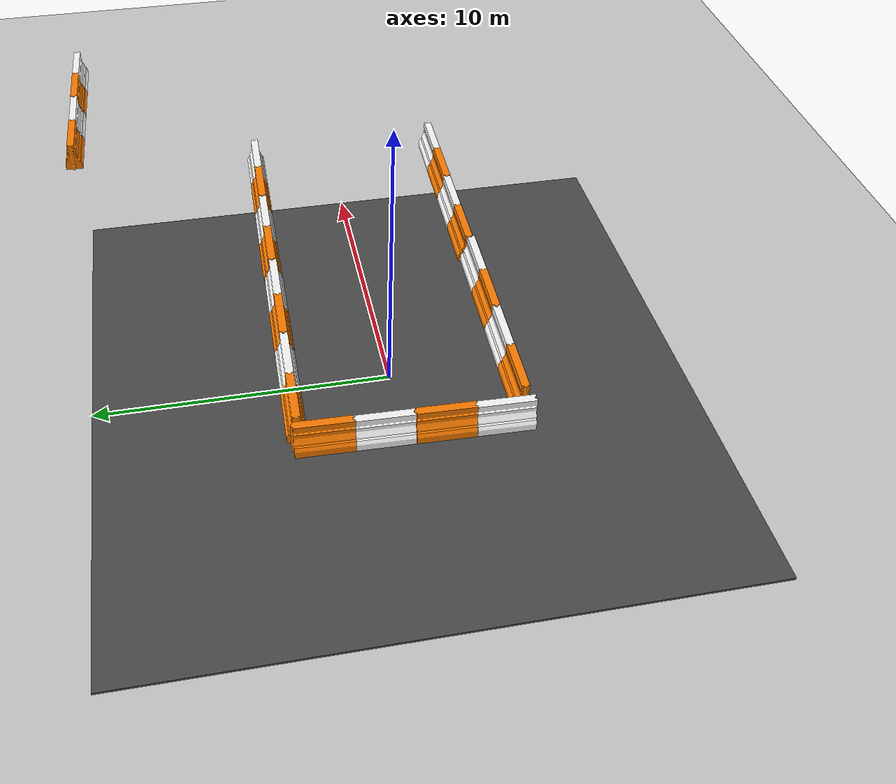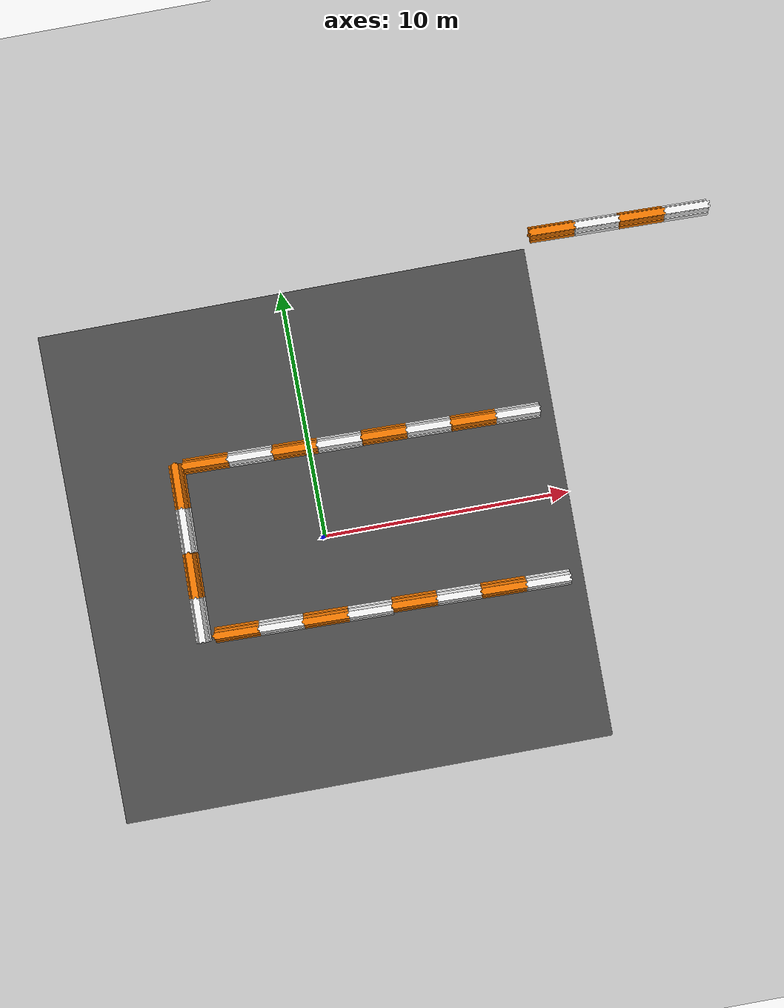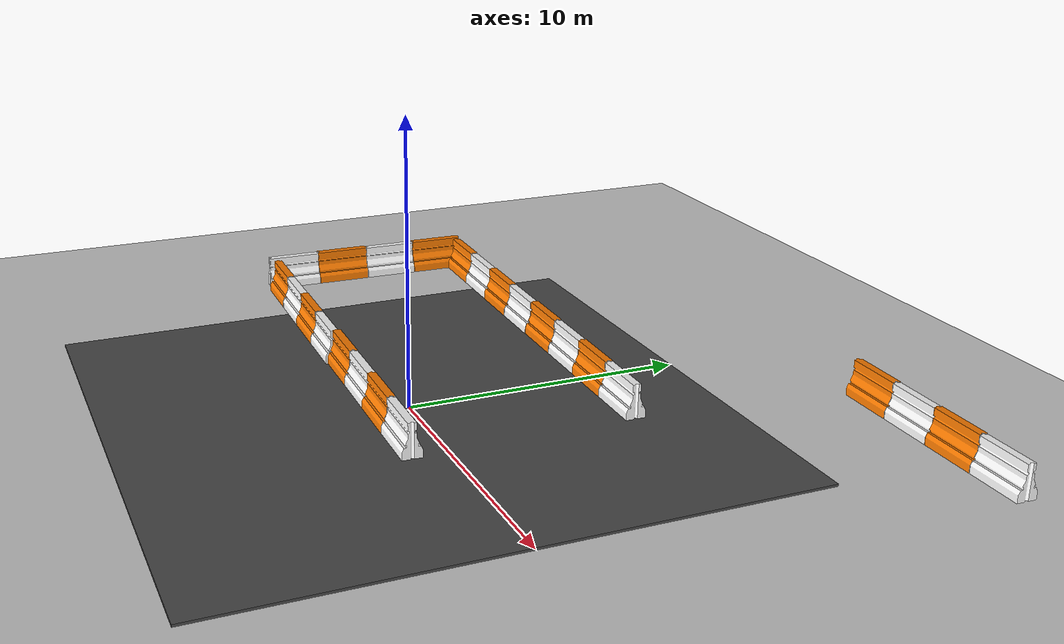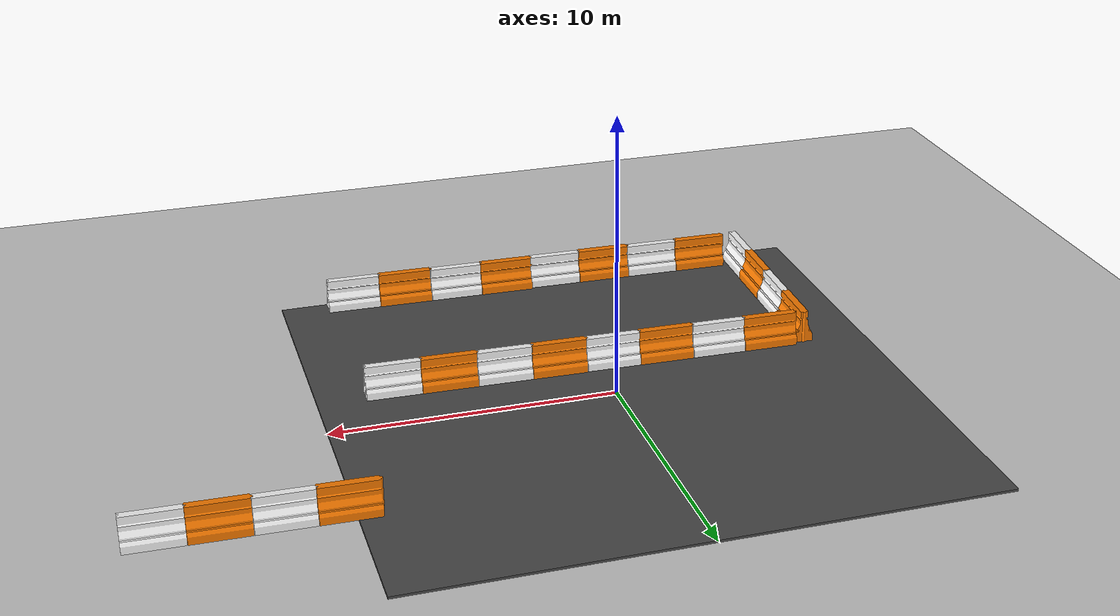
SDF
<sdf version="1.7">
 <world name="default">
  <model name="ground_plane">
   <static>1</static>
   <link name="link">
    <collision name="collision">
     <geometry><plane><normal>0 0 1</normal><size>100 100</size></plane></geometry>
     <surface><friction><ode><mu>100</mu><mu2>50</mu2></ode></friction></surface>
    </collision>
    <visual name="visual">
     <cast_shadows>0</cast_shadows>
     <geometry><plane><normal>0 0 1</normal><size>100 100</size></plane></geometry>
     <material>
      <script><uri>file://media/materials/scripts/gazebo.material</uri><name>Gazebo/Grey</name></script>
     </material>
    </visual>
   </link>
  </model>
  <model name="asphalt_plane">
   <static>1</static>
   <link name="link">
    <collision name="collision"><geometry><box><size>20 20 0.1</size></box></geometry></collision>
    <visual name="visual">
     <cast_shadows>0</cast_shadows>
     <geometry><box><size>20 20 0.1</size></box></geometry>
     <material>
      <script>
       <uri>model://asphalt_plane/materials/scripts</uri>
       <uri>model://asphalt_plane/materials/textures</uri>
       <name>vrc/asphalt</name>
      </script>
     </material>
    </visual>
   </link>
  </model>
  <model name="barrier">
   <link name="link">
    <pose>10.1496 5.51614 0 0 0 -0.785398</pose>
    <visual name="visual">
     <geometry>
      <mesh><uri>model://drc_practice_white_jersey_barrier/meshes/jersey_barrier.dae</uri></mesh>
     </geometry>
     <material><shader type="pixel"/></material>
    </visual>
    <collision name="collision">
     <geometry>
      <mesh>
       <uri>/home/ngc/.gazebo/models/drc_practice_white_jersey_barrier/meshes/jersey_barrier.dae</uri>
       <scale>1 1 1</scale>
      </mesh>
     </geometry>
     <surface>
      <friction>
       <ode><mu>1</mu><mu2>1</mu2><fdir1>0 0 0</fdir1><slip1>0</slip1><slip2>0</slip2></ode>
       <torsional>
        <coefficient>1</coefficient>
        <patch_radius>0</patch_radius>
        <surface_radius>0</surface_radius>
        <use_patch_radius>1</use_patch_radius>
        <ode><slip>0</slip></ode>
       </torsional>
      </friction>
      <bounce><restitution_coefficient>0</restitution_coefficient><threshold>1e+06</threshold></bounce>
      <contact>
       <collide_without_contact>0</collide_without_contact>
       <collide_without_contact_bitmask>1</collide_without_contact_bitmask>
       <collide_bitmask>1</collide_bitmask>
       <ode>
        <soft_cfm>0</soft_cfm>
        <soft_erp>0.2</soft_erp>
        <kp>1e+13</kp>
        <kd>1</kd>
        <max_vel>0.01</max_vel>
        <min_depth>0</min_depth>
       </ode>
       <bullet>
        <split_impulse>1</split_impulse>
        <split_impulse_penetration_threshold>-0.01</split_impulse_penetration_threshold>
        <soft_cfm>0</soft_cfm>
        <soft_erp>0.2</soft_erp>
        <kp>1e+13</kp>
        <kd>1</kd>
       </bullet>
      </contact>
     </surface>
    </collision>
   </link>
   <link name="five::link">
    <pose>6.3884 1.79074 0 0 0 -0.785398</pose>
    <visual name="visual">
     <geometry>
      <mesh><uri>model://drc_practice_orange_jersey_barrier/meshes/jersey_barrier.dae</uri></mesh>
     </geometry>
     <material><shader type="pixel"/></material>
    </visual>
    <collision name="collision">
     <geometry>
      <mesh>
       <uri>/home/ngc/.gazebo/models/drc_practice_orange_jersey_barrier/meshes/jersey_barrier.dae</uri>
       <scale>1 1 1</scale>
      </mesh>
     </geometry>
     <surface>
      <friction>
       <ode><mu>1</mu><mu2>1</mu2><fdir1>0 0 0</fdir1><slip1>0</slip1><slip2>0</slip2></ode>
       <torsional>
        <coefficient>1</coefficient>
        <patch_radius>0</patch_radius>
        <surface_radius>0</surface_radius>
        <use_patch_radius>1</use_patch_radius>
        <ode><slip>0</slip></ode>
       </torsional>
      </friction>
      <bounce><restitution_coefficient>0</restitution_coefficient><threshold>1e+06</threshold></bounce>
      <contact>
       <collide_without_contact>0</collide_without_contact>
       <collide_without_contact_bitmask>1</collide_without_contact_bitmask>
       <collide_bitmask>1</collide_bitmask>
       <ode>
        <soft_cfm>0</soft_cfm>
        <soft_erp>0.2</soft_erp>
        <kp>1e+13</kp>
        <kd>1</kd>
        <max_vel>0.01</max_vel>
        <min_depth>0</min_depth>
       </ode>
       <bullet>
        <split_impulse>1</split_impulse>
        <split_impulse_penetration_threshold>-0.01</split_impulse_penetration_threshold>
        <soft_cfm>0</soft_cfm>
        <soft_erp>0.2</soft_erp>
        <kp>1e+13</kp>
        <kd>1</kd>
       </bullet>
      </contact>
     </surface>
    </collision>
   </link>
   <link name="seven::link">
    <pose>8.89611 4.27529 0 0 0 -0.785398</pose>
    <visual name="visual">
     <geometry>
      <mesh><uri>model://drc_practice_orange_jersey_barrier/meshes/jersey_barrier.dae</uri></mesh>
     </geometry>
     <material><shader type="pixel"/></material>
    </visual>
    <collision name="collision">
     <geometry>
      <mesh>
       <uri>/home/ngc/.gazebo/models/drc_practice_orange_jersey_barrier/meshes/jersey_barrier.dae</uri>
       <scale>1 1 1</scale>
      </mesh>
     </geometry>
     <surface>
      <friction>
       <ode><mu>1</mu><mu2>1</mu2><fdir1>0 0 0</fdir1><slip1>0</slip1><slip2>0</slip2></ode>
       <torsional>
        <coefficient>1</coefficient>
        <patch_radius>0</patch_radius>
        <surface_radius>0</surface_radius>
        <use_patch_radius>1</use_patch_radius>
        <ode><slip>0</slip></ode>
       </torsional>
      </friction>
      <bounce><restitution_coefficient>0</restitution_coefficient><threshold>1e+06</threshold></bounce>
      <contact>
       <collide_without_contact>0</collide_without_contact>
       <collide_without_contact_bitmask>1</collide_without_contact_bitmask>
       <collide_bitmask>1</collide_bitmask>
       <ode>
        <soft_cfm>0</soft_cfm>
        <soft_erp>0.2</soft_erp>
        <kp>1e+13</kp>
        <kd>1</kd>
        <max_vel>0.01</max_vel>
        <min_depth>0</min_depth>
       </ode>
       <bullet>
        <split_impulse>1</split_impulse>
        <split_impulse_penetration_threshold>-0.01</split_impulse_penetration_threshold>
        <soft_cfm>0</soft_cfm>
        <soft_erp>0.2</soft_erp>
        <kp>1e+13</kp>
        <kd>1</kd>
       </bullet>
      </contact>
     </surface>
    </collision>
   </link>
   <link name="six::link">
    <pose>7.6423 3.03258 0 0 0 -0.785398</pose>
    <visual name="visual">
     <geometry>
      <mesh><uri>model://drc_practice_white_jersey_barrier/meshes/jersey_barrier.dae</uri></mesh>
     </geometry>
     <material><shader type="pixel"/></material>
    </visual>
    <collision name="collision">
     <geometry>
      <mesh>
       <uri>/home/ngc/.gazebo/models/drc_practice_white_jersey_barrier/meshes/jersey_barrier.dae</uri>
       <scale>1 1 1</scale>
      </mesh>
     </geometry>
     <surface>
      <friction>
       <ode><mu>1</mu><mu2>1</mu2><fdir1>0 0 0</fdir1><slip1>0</slip1><slip2>0</slip2></ode>
       <torsional>
        <coefficient>1</coefficient>
        <patch_radius>0</patch_radius>
        <surface_radius>0</surface_radius>
        <use_patch_radius>1</use_patch_radius>
        <ode><slip>0</slip></ode>
       </torsional>
      </friction>
      <bounce><restitution_coefficient>0</restitution_coefficient><threshold>1e+06</threshold></bounce>
      <contact>
       <collide_without_contact>0</collide_without_contact>
       <collide_without_contact_bitmask>1</collide_without_contact_bitmask>
       <collide_bitmask>1</collide_bitmask>
       <ode>
        <soft_cfm>0</soft_cfm>
        <soft_erp>0.2</soft_erp>
        <kp>1e+13</kp>
        <kd>1</kd>
        <max_vel>0.01</max_vel>
        <min_depth>0</min_depth>
       </ode>
       <bullet>
        <split_impulse>1</split_impulse>
        <split_impulse_penetration_threshold>-0.01</split_impulse_penetration_threshold>
        <soft_cfm>0</soft_cfm>
        <soft_erp>0.2</soft_erp>
        <kp>1e+13</kp>
        <kd>1</kd>
       </bullet>
      </contact>
     </surface>
    </collision>
   </link>
   <static>1</static>
   <pose>-2.67395 0.225919 3 0 0 -0.802882</pose>
  </model>
  <model name="barrier_clone">
   <link name="link">
    <pose>10.1496 5.51614 0 0 0 -0.785398</pose>
    <visual name="visual">
     <geometry>
      <mesh><uri>model://drc_practice_white_jersey_barrier/meshes/jersey_barrier.dae</uri></mesh>
     </geometry>
     <material><shader type="pixel"/></material>
    </visual>
    <collision name="collision">
     <geometry>
      <mesh>
       <uri>/home/ngc/.gazebo/models/drc_practice_white_jersey_barrier/meshes/jersey_barrier.dae</uri>
       <scale>1 1 1</scale>
      </mesh>
     </geometry>
     <surface>
      <friction>
       <ode><mu>1</mu><mu2>1</mu2><fdir1>0 0 0</fdir1><slip1>0</slip1><slip2>0</slip2></ode>
       <torsional>
        <coefficient>1</coefficient>
        <patch_radius>0</patch_radius>
        <surface_radius>0</surface_radius>
        <use_patch_radius>1</use_patch_radius>
        <ode><slip>0</slip></ode>
       </torsional>
      </friction>
      <bounce><restitution_coefficient>0</restitution_coefficient><threshold>1e+06</threshold></bounce>
      <contact>
       <collide_without_contact>0</collide_without_contact>
       <collide_without_contact_bitmask>1</collide_without_contact_bitmask>
       <collide_bitmask>1</collide_bitmask>
       <ode>
        <soft_cfm>0</soft_cfm>
        <soft_erp>0.2</soft_erp>
        <kp>1e+13</kp>
        <kd>1</kd>
        <max_vel>0.01</max_vel>
        <min_depth>0</min_depth>
       </ode>
       <bullet>
        <split_impulse>1</split_impulse>
        <split_impulse_penetration_threshold>-0.01</split_impulse_penetration_threshold>
        <soft_cfm>0</soft_cfm>
        <soft_erp>0.2</soft_erp>
        <kp>1e+13</kp>
        <kd>1</kd>
       </bullet>
      </contact>
     </surface>
    </collision>
   </link>
   <link name="five::link">
    <pose>6.3884 1.79074 0 0 0 -0.785398</pose>
    <visual name="visual">
     <geometry>
      <mesh><uri>model://drc_practice_orange_jersey_barrier/meshes/jersey_barrier.dae</uri></mesh>
     </geometry>
     <material><shader type="pixel"/></material>
    </visual>
    <collision name="collision">
     <geometry>
      <mesh>
       <uri>/home/ngc/.gazebo/models/drc_practice_orange_jersey_barrier/meshes/jersey_barrier.dae</uri>
       <scale>1 1 1</scale>
      </mesh>
     </geometry>
     <surface>
      <friction>
       <ode><mu>1</mu><mu2>1</mu2><fdir1>0 0 0</fdir1><slip1>0</slip1><slip2>0</slip2></ode>
       <torsional>
        <coefficient>1</coefficient>
        <patch_radius>0</patch_radius>
        <surface_radius>0</surface_radius>
        <use_patch_radius>1</use_patch_radius>
        <ode><slip>0</slip></ode>
       </torsional>
      </friction>
      <bounce><restitution_coefficient>0</restitution_coefficient><threshold>1e+06</threshold></bounce>
      <contact>
       <collide_without_contact>0</collide_without_contact>
       <collide_without_contact_bitmask>1</collide_without_contact_bitmask>
       <collide_bitmask>1</collide_bitmask>
       <ode>
        <soft_cfm>0</soft_cfm>
        <soft_erp>0.2</soft_erp>
        <kp>1e+13</kp>
        <kd>1</kd>
        <max_vel>0.01</max_vel>
        <min_depth>0</min_depth>
       </ode>
       <bullet>
        <split_impulse>1</split_impulse>
        <split_impulse_penetration_threshold>-0.01</split_impulse_penetration_threshold>
        <soft_cfm>0</soft_cfm>
        <soft_erp>0.2</soft_erp>
        <kp>1e+13</kp>
        <kd>1</kd>
       </bullet>
      </contact>
     </surface>
    </collision>
   </link>
   <link name="seven::link">
    <pose>8.89611 4.27529 0 0 0 -0.785398</pose>
    <visual name="visual">
     <geometry>
      <mesh><uri>model://drc_practice_orange_jersey_barrier/meshes/jersey_barrier.dae</uri></mesh>
     </geometry>
     <material><shader type="pixel"/></material>
    </visual>
    <collision name="collision">
     <geometry>
      <mesh>
       <uri>/home/ngc/.gazebo/models/drc_practice_orange_jersey_barrier/meshes/jersey_barrier.dae</uri>
       <scale>1 1 1</scale>
      </mesh>
     </geometry>
     <surface>
      <friction>
       <ode><mu>1</mu><mu2>1</mu2><fdir1>0 0 0</fdir1><slip1>0</slip1><slip2>0</slip2></ode>
       <torsional>
        <coefficient>1</coefficient>
        <patch_radius>0</patch_radius>
        <surface_radius>0</surface_radius>
        <use_patch_radius>1</use_patch_radius>
        <ode><slip>0</slip></ode>
       </torsional>
      </friction>
      <bounce><restitution_coefficient>0</restitution_coefficient><threshold>1e+06</threshold></bounce>
      <contact>
       <collide_without_contact>0</collide_without_contact>
       <collide_without_contact_bitmask>1</collide_without_contact_bitmask>
       <collide_bitmask>1</collide_bitmask>
       <ode>
        <soft_cfm>0</soft_cfm>
        <soft_erp>0.2</soft_erp>
        <kp>1e+13</kp>
        <kd>1</kd>
        <max_vel>0.01</max_vel>
        <min_depth>0</min_depth>
       </ode>
       <bullet>
        <split_impulse>1</split_impulse>
        <split_impulse_penetration_threshold>-0.01</split_impulse_penetration_threshold>
        <soft_cfm>0</soft_cfm>
        <soft_erp>0.2</soft_erp>
        <kp>1e+13</kp>
        <kd>1</kd>
       </bullet>
      </contact>
     </surface>
    </collision>
   </link>
   <link name="six::link">
    <pose>7.6423 3.03258 0 0 0 -0.785398</pose>
    <visual name="visual">
     <geometry>
      <mesh><uri>model://drc_practice_white_jersey_barrier/meshes/jersey_barrier.dae</uri></mesh>
     </geometry>
     <material><shader type="pixel"/></material>
    </visual>
    <collision name="collision">
     <geometry>
      <mesh>
       <uri>/home/ngc/.gazebo/models/drc_practice_white_jersey_barrier/meshes/jersey_barrier.dae</uri>
       <scale>1 1 1</scale>
      </mesh>
     </geometry>
     <surface>
      <friction>
       <ode><mu>1</mu><mu2>1</mu2><fdir1>0 0 0</fdir1><slip1>0</slip1><slip2>0</slip2></ode>
       <torsional>
        <coefficient>1</coefficient>
        <patch_radius>0</patch_radius>
        <surface_radius>0</surface_radius>
        <use_patch_radius>1</use_patch_radius>
        <ode><slip>0</slip></ode>
       </torsional>
      </friction>
      <bounce><restitution_coefficient>0</restitution_coefficient><threshold>1e+06</threshold></bounce>
      <contact>
       <collide_without_contact>0</collide_without_contact>
       <collide_without_contact_bitmask>1</collide_without_contact_bitmask>
       <collide_bitmask>1</collide_bitmask>
       <ode>
        <soft_cfm>0</soft_cfm>
        <soft_erp>0.2</soft_erp>
        <kp>1e+13</kp>
        <kd>1</kd>
        <max_vel>0.01</max_vel>
        <min_depth>0</min_depth>
       </ode>
       <bullet>
        <split_impulse>1</split_impulse>
        <split_impulse_penetration_threshold>-0.01</split_impulse_penetration_threshold>
        <soft_cfm>0</soft_cfm>
        <soft_erp>0.2</soft_erp>
        <kp>1e+13</kp>
        <kd>1</kd>
       </bullet>
      </contact>
     </surface>
    </collision>
   </link>
   <static>1</static>
   <pose>-2.67408 6.88591 3 0 0 -0.802882</pose>
  </model>
  <model name="barrier_clone_0">
   <link name="link">
    <pose>10.1496 5.51614 0 0 0 -0.785398</pose>
    <visual name="visual">
     <geometry>
      <mesh><uri>model://drc_practice_white_jersey_barrier/meshes/jersey_barrier.dae</uri></mesh>
     </geometry>
     <material><shader type="pixel"/></material>
    </visual>
    <collision name="collision">
     <geometry>
      <mesh>
       <uri>/home/ngc/.gazebo/models/drc_practice_white_jersey_barrier/meshes/jersey_barrier.dae</uri>
       <scale>1 1 1</scale>
      </mesh>
     </geometry>
     <surface>
      <friction>
       <ode><mu>1</mu><mu2>1</mu2><fdir1>0 0 0</fdir1><slip1>0</slip1><slip2>0</slip2></ode>
       <torsional>
        <coefficient>1</coefficient>
        <patch_radius>0</patch_radius>
        <surface_radius>0</surface_radius>
        <use_patch_radius>1</use_patch_radius>
        <ode><slip>0</slip></ode>
       </torsional>
      </friction>
      <bounce><restitution_coefficient>0</restitution_coefficient><threshold>1e+06</threshold></bounce>
      <contact>
       <collide_without_contact>0</collide_without_contact>
       <collide_without_contact_bitmask>1</collide_without_contact_bitmask>
       <collide_bitmask>1</collide_bitmask>
       <ode>
        <soft_cfm>0</soft_cfm>
        <soft_erp>0.2</soft_erp>
        <kp>1e+13</kp>
        <kd>1</kd>
        <max_vel>0.01</max_vel>
        <min_depth>0</min_depth>
       </ode>
       <bullet>
        <split_impulse>1</split_impulse>
        <split_impulse_penetration_threshold>-0.01</split_impulse_penetration_threshold>
        <soft_cfm>0</soft_cfm>
        <soft_erp>0.2</soft_erp>
        <kp>1e+13</kp>
        <kd>1</kd>
       </bullet>
      </contact>
     </surface>
    </collision>
   </link>
   <link name="five::link">
    <pose>6.3884 1.79074 0 0 0 -0.785398</pose>
    <visual name="visual">
     <geometry>
      <mesh><uri>model://drc_practice_orange_jersey_barrier/meshes/jersey_barrier.dae</uri></mesh>
     </geometry>
     <material><shader type="pixel"/></material>
    </visual>
    <collision name="collision">
     <geometry>
      <mesh>
       <uri>/home/ngc/.gazebo/models/drc_practice_orange_jersey_barrier/meshes/jersey_barrier.dae</uri>
       <scale>1 1 1</scale>
      </mesh>
     </geometry>
     <surface>
      <friction>
       <ode><mu>1</mu><mu2>1</mu2><fdir1>0 0 0</fdir1><slip1>0</slip1><slip2>0</slip2></ode>
       <torsional>
        <coefficient>1</coefficient>
        <patch_radius>0</patch_radius>
        <surface_radius>0</surface_radius>
        <use_patch_radius>1</use_patch_radius>
        <ode><slip>0</slip></ode>
       </torsional>
      </friction>
      <bounce><restitution_coefficient>0</restitution_coefficient><threshold>1e+06</threshold></bounce>
      <contact>
       <collide_without_contact>0</collide_without_contact>
       <collide_without_contact_bitmask>1</collide_without_contact_bitmask>
       <collide_bitmask>1</collide_bitmask>
       <ode>
        <soft_cfm>0</soft_cfm>
        <soft_erp>0.2</soft_erp>
        <kp>1e+13</kp>
        <kd>1</kd>
        <max_vel>0.01</max_vel>
        <min_depth>0</min_depth>
       </ode>
       <bullet>
        <split_impulse>1</split_impulse>
        <split_impulse_penetration_threshold>-0.01</split_impulse_penetration_threshold>
        <soft_cfm>0</soft_cfm>
        <soft_erp>0.2</soft_erp>
        <kp>1e+13</kp>
        <kd>1</kd>
       </bullet>
      </contact>
     </surface>
    </collision>
   </link>
   <link name="seven::link">
    <pose>8.89611 4.27529 0 0 0 -0.785398</pose>
    <visual name="visual">
     <geometry>
      <mesh><uri>model://drc_practice_orange_jersey_barrier/meshes/jersey_barrier.dae</uri></mesh>
     </geometry>
     <material><shader type="pixel"/></material>
    </visual>
    <collision name="collision">
     <geometry>
      <mesh>
       <uri>/home/ngc/.gazebo/models/drc_practice_orange_jersey_barrier/meshes/jersey_barrier.dae</uri>
       <scale>1 1 1</scale>
      </mesh>
     </geometry>
     <surface>
      <friction>
       <ode><mu>1</mu><mu2>1</mu2><fdir1>0 0 0</fdir1><slip1>0</slip1><slip2>0</slip2></ode>
       <torsional>
        <coefficient>1</coefficient>
        <patch_radius>0</patch_radius>
        <surface_radius>0</surface_radius>
        <use_patch_radius>1</use_patch_radius>
        <ode><slip>0</slip></ode>
       </torsional>
      </friction>
      <bounce><restitution_coefficient>0</restitution_coefficient><threshold>1e+06</threshold></bounce>
      <contact>
       <collide_without_contact>0</collide_without_contact>
       <collide_without_contact_bitmask>1</collide_without_contact_bitmask>
       <collide_bitmask>1</collide_bitmask>
       <ode>
        <soft_cfm>0</soft_cfm>
        <soft_erp>0.2</soft_erp>
        <kp>1e+13</kp>
        <kd>1</kd>
        <max_vel>0.01</max_vel>
        <min_depth>0</min_depth>
       </ode>
       <bullet>
        <split_impulse>1</split_impulse>
        <split_impulse_penetration_threshold>-0.01</split_impulse_penetration_threshold>
        <soft_cfm>0</soft_cfm>
        <soft_erp>0.2</soft_erp>
        <kp>1e+13</kp>
        <kd>1</kd>
       </bullet>
      </contact>
     </surface>
    </collision>
   </link>
   <link name="six::link">
    <pose>7.6423 3.03258 0 0 0 -0.785398</pose>
    <visual name="visual">
     <geometry>
      <mesh><uri>model://drc_practice_white_jersey_barrier/meshes/jersey_barrier.dae</uri></mesh>
     </geometry>
     <material><shader type="pixel"/></material>
    </visual>
    <collision name="collision">
     <geometry>
      <mesh>
       <uri>/home/ngc/.gazebo/models/drc_practice_white_jersey_barrier/meshes/jersey_barrier.dae</uri>
       <scale>1 1 1</scale>
      </mesh>
     </geometry>
     <surface>
      <friction>
       <ode><mu>1</mu><mu2>1</mu2><fdir1>0 0 0</fdir1><slip1>0</slip1><slip2>0</slip2></ode>
       <torsional>
        <coefficient>1</coefficient>
        <patch_radius>0</patch_radius>
        <surface_radius>0</surface_radius>
        <use_patch_radius>1</use_patch_radius>
        <ode><slip>0</slip></ode>
       </torsional>
      </friction>
      <bounce><restitution_coefficient>0</restitution_coefficient><threshold>1e+06</threshold></bounce>
      <contact>
       <collide_without_contact>0</collide_without_contact>
       <collide_without_contact_bitmask>1</collide_without_contact_bitmask>
       <collide_bitmask>1</collide_bitmask>
       <ode>
        <soft_cfm>0</soft_cfm>
        <soft_erp>0.2</soft_erp>
        <kp>1e+13</kp>
        <kd>1</kd>
        <max_vel>0.01</max_vel>
        <min_depth>0</min_depth>
       </ode>
       <bullet>
        <split_impulse>1</split_impulse>
        <split_impulse_penetration_threshold>-0.01</split_impulse_penetration_threshold>
        <soft_cfm>0</soft_cfm>
        <soft_erp>0.2</soft_erp>
        <kp>1e+13</kp>
        <kd>1</kd>
       </bullet>
      </contact>
     </surface>
    </collision>
   </link>
   <static>1</static>
   <pose>-1.84342 8.67192 3 0 0 -2.37547</pose>
  </model>
  <model name="barrier_clone_1">
   <link name="link">
    <pose>10.1496 5.51614 0 0 0 -0.785398</pose>
    <visual name="visual">
     <geometry>
      <mesh><uri>model://drc_practice_white_jersey_barrier/meshes/jersey_barrier.dae</uri></mesh>
     </geometry>
     <material><shader type="pixel"/></material>
    </visual>
    <collision name="collision">
     <geometry>
      <mesh>
       <uri>/home/ngc/.gazebo/models/drc_practice_white_jersey_barrier/meshes/jersey_barrier.dae</uri>
       <scale>1 1 1</scale>
      </mesh>
     </geometry>
     <surface>
      <friction>
       <ode><mu>1</mu><mu2>1</mu2><fdir1>0 0 0</fdir1><slip1>0</slip1><slip2>0</slip2></ode>
       <torsional>
        <coefficient>1</coefficient>
        <patch_radius>0</patch_radius>
        <surface_radius>0</surface_radius>
        <use_patch_radius>1</use_patch_radius>
        <ode><slip>0</slip></ode>
       </torsional>
      </friction>
      <bounce><restitution_coefficient>0</restitution_coefficient><threshold>1e+06</threshold></bounce>
      <contact>
       <collide_without_contact>0</collide_without_contact>
       <collide_without_contact_bitmask>1</collide_without_contact_bitmask>
       <collide_bitmask>1</collide_bitmask>
       <ode>
        <soft_cfm>0</soft_cfm>
        <soft_erp>0.2</soft_erp>
        <kp>1e+13</kp>
        <kd>1</kd>
        <max_vel>0.01</max_vel>
        <min_depth>0</min_depth>
       </ode>
       <bullet>
        <split_impulse>1</split_impulse>
        <split_impulse_penetration_threshold>-0.01</split_impulse_penetration_threshold>
        <soft_cfm>0</soft_cfm>
        <soft_erp>0.2</soft_erp>
        <kp>1e+13</kp>
        <kd>1</kd>
       </bullet>
      </contact>
     </surface>
    </collision>
   </link>
   <link name="five::link">
    <pose>6.3884 1.79074 0 0 0 -0.785398</pose>
    <visual name="visual">
     <geometry>
      <mesh><uri>model://drc_practice_orange_jersey_barrier/meshes/jersey_barrier.dae</uri></mesh>
     </geometry>
     <material><shader type="pixel"/></material>
    </visual>
    <collision name="collision">
     <geometry>
      <mesh>
       <uri>/home/ngc/.gazebo/models/drc_practice_orange_jersey_barrier/meshes/jersey_barrier.dae</uri>
       <scale>1 1 1</scale>
      </mesh>
     </geometry>
     <surface>
      <friction>
       <ode><mu>1</mu><mu2>1</mu2><fdir1>0 0 0</fdir1><slip1>0</slip1><slip2>0</slip2></ode>
       <torsional>
        <coefficient>1</coefficient>
        <patch_radius>0</patch_radius>
        <surface_radius>0</surface_radius>
        <use_patch_radius>1</use_patch_radius>
        <ode><slip>0</slip></ode>
       </torsional>
      </friction>
      <bounce><restitution_coefficient>0</restitution_coefficient><threshold>1e+06</threshold></bounce>
      <contact>
       <collide_without_contact>0</collide_without_contact>
       <collide_without_contact_bitmask>1</collide_without_contact_bitmask>
       <collide_bitmask>1</collide_bitmask>
       <ode>
        <soft_cfm>0</soft_cfm>
        <soft_erp>0.2</soft_erp>
        <kp>1e+13</kp>
        <kd>1</kd>
        <max_vel>0.01</max_vel>
        <min_depth>0</min_depth>
       </ode>
       <bullet>
        <split_impulse>1</split_impulse>
        <split_impulse_penetration_threshold>-0.01</split_impulse_penetration_threshold>
        <soft_cfm>0</soft_cfm>
        <soft_erp>0.2</soft_erp>
        <kp>1e+13</kp>
        <kd>1</kd>
       </bullet>
      </contact>
     </surface>
    </collision>
   </link>
   <link name="seven::link">
    <pose>8.89611 4.27529 0 0 0 -0.785398</pose>
    <visual name="visual">
     <geometry>
      <mesh><uri>model://drc_practice_orange_jersey_barrier/meshes/jersey_barrier.dae</uri></mesh>
     </geometry>
     <material><shader type="pixel"/></material>
    </visual>
    <collision name="collision">
     <geometry>
      <mesh>
       <uri>/home/ngc/.gazebo/models/drc_practice_orange_jersey_barrier/meshes/jersey_barrier.dae</uri>
       <scale>1 1 1</scale>
      </mesh>
     </geometry>
     <surface>
      <friction>
       <ode><mu>1</mu><mu2>1</mu2><fdir1>0 0 0</fdir1><slip1>0</slip1><slip2>0</slip2></ode>
       <torsional>
        <coefficient>1</coefficient>
        <patch_radius>0</patch_radius>
        <surface_radius>0</surface_radius>
        <use_patch_radius>1</use_patch_radius>
        <ode><slip>0</slip></ode>
       </torsional>
      </friction>
      <bounce><restitution_coefficient>0</restitution_coefficient><threshold>1e+06</threshold></bounce>
      <contact>
       <collide_without_contact>0</collide_without_contact>
       <collide_without_contact_bitmask>1</collide_without_contact_bitmask>
       <collide_bitmask>1</collide_bitmask>
       <ode>
        <soft_cfm>0</soft_cfm>
        <soft_erp>0.2</soft_erp>
        <kp>1e+13</kp>
        <kd>1</kd>
        <max_vel>0.01</max_vel>
        <min_depth>0</min_depth>
       </ode>
       <bullet>
        <split_impulse>1</split_impulse>
        <split_impulse_penetration_threshold>-0.01</split_impulse_penetration_threshold>
        <soft_cfm>0</soft_cfm>
        <soft_erp>0.2</soft_erp>
        <kp>1e+13</kp>
        <kd>1</kd>
       </bullet>
      </contact>
     </surface>
    </collision>
   </link>
   <link name="six::link">
    <pose>7.6423 3.03258 0 0 0 -0.785398</pose>
    <visual name="visual">
     <geometry>
      <mesh><uri>model://drc_practice_white_jersey_barrier/meshes/jersey_barrier.dae</uri></mesh>
     </geometry>
     <material><shader type="pixel"/></material>
    </visual>
    <collision name="collision">
     <geometry>
      <mesh>
       <uri>/home/ngc/.gazebo/models/drc_practice_white_jersey_barrier/meshes/jersey_barrier.dae</uri>
       <scale>1 1 1</scale>
      </mesh>
     </geometry>
     <surface>
      <friction>
       <ode><mu>1</mu><mu2>1</mu2><fdir1>0 0 0</fdir1><slip1>0</slip1><slip2>0</slip2></ode>
       <torsional>
        <coefficient>1</coefficient>
        <patch_radius>0</patch_radius>
        <surface_radius>0</surface_radius>
        <use_patch_radius>1</use_patch_radius>
        <ode><slip>0</slip></ode>
       </torsional>
      </friction>
      <bounce><restitution_coefficient>0</restitution_coefficient><threshold>1e+06</threshold></bounce>
      <contact>
       <collide_without_contact>0</collide_without_contact>
       <collide_without_contact_bitmask>1</collide_without_contact_bitmask>
       <collide_bitmask>1</collide_bitmask>
       <ode>
        <soft_cfm>0</soft_cfm>
        <soft_erp>0.2</soft_erp>
        <kp>1e+13</kp>
        <kd>1</kd>
        <max_vel>0.01</max_vel>
        <min_depth>0</min_depth>
       </ode>
       <bullet>
        <split_impulse>1</split_impulse>
        <split_impulse_penetration_threshold>-0.01</split_impulse_penetration_threshold>
        <soft_cfm>0</soft_cfm>
        <soft_erp>0.2</soft_erp>
        <kp>1e+13</kp>
        <kd>1</kd>
       </bullet>
      </contact>
     </surface>
    </collision>
   </link>
   <static>1</static>
   <pose>-9.71697 0.310372 3 0 0 -0.802882</pose>
  </model>
  <model name="barrier_clone_1_clone">
   <link name="link">
    <pose>10.1496 5.51614 0 0 0 -0.785398</pose>
    <visual name="visual">
     <geometry>
      <mesh><uri>model://drc_practice_white_jersey_barrier/meshes/jersey_barrier.dae</uri></mesh>
     </geometry>
     <material><shader type="pixel"/></material>
    </visual>
    <collision name="collision">
     <geometry>
      <mesh>
       <uri>/home/ngc/.gazebo/models/drc_practice_white_jersey_barrier/meshes/jersey_barrier.dae</uri>
       <scale>1 1 1</scale>
      </mesh>
     </geometry>
     <surface>
      <friction>
       <ode><mu>1</mu><mu2>1</mu2><fdir1>0 0 0</fdir1><slip1>0</slip1><slip2>0</slip2></ode>
       <torsional>
        <coefficient>1</coefficient>
        <patch_radius>0</patch_radius>
        <surface_radius>0</surface_radius>
        <use_patch_radius>1</use_patch_radius>
        <ode><slip>0</slip></ode>
       </torsional>
      </friction>
      <bounce><restitution_coefficient>0</restitution_coefficient><threshold>1e+06</threshold></bounce>
      <contact>
       <collide_without_contact>0</collide_without_contact>
       <collide_without_contact_bitmask>1</collide_without_contact_bitmask>
       <collide_bitmask>1</collide_bitmask>
       <ode>
        <soft_cfm>0</soft_cfm>
        <soft_erp>0.2</soft_erp>
        <kp>1e+13</kp>
        <kd>1</kd>
        <max_vel>0.01</max_vel>
        <min_depth>0</min_depth>
       </ode>
       <bullet>
        <split_impulse>1</split_impulse>
        <split_impulse_penetration_threshold>-0.01</split_impulse_penetration_threshold>
        <soft_cfm>0</soft_cfm>
        <soft_erp>0.2</soft_erp>
        <kp>1e+13</kp>
        <kd>1</kd>
       </bullet>
      </contact>
     </surface>
    </collision>
   </link>
   <link name="five::link">
    <pose>6.3884 1.79074 0 0 0 -0.785398</pose>
    <visual name="visual">
     <geometry>
      <mesh><uri>model://drc_practice_orange_jersey_barrier/meshes/jersey_barrier.dae</uri></mesh>
     </geometry>
     <material><shader type="pixel"/></material>
    </visual>
    <collision name="collision">
     <geometry>
      <mesh>
       <uri>/home/ngc/.gazebo/models/drc_practice_orange_jersey_barrier/meshes/jersey_barrier.dae</uri>
       <scale>1 1 1</scale>
      </mesh>
     </geometry>
     <surface>
      <friction>
       <ode><mu>1</mu><mu2>1</mu2><fdir1>0 0 0</fdir1><slip1>0</slip1><slip2>0</slip2></ode>
       <torsional>
        <coefficient>1</coefficient>
        <patch_radius>0</patch_radius>
        <surface_radius>0</surface_radius>
        <use_patch_radius>1</use_patch_radius>
        <ode><slip>0</slip></ode>
       </torsional>
      </friction>
      <bounce><restitution_coefficient>0</restitution_coefficient><threshold>1e+06</threshold></bounce>
      <contact>
       <collide_without_contact>0</collide_without_contact>
       <collide_without_contact_bitmask>1</collide_without_contact_bitmask>
       <collide_bitmask>1</collide_bitmask>
       <ode>
        <soft_cfm>0</soft_cfm>
        <soft_erp>0.2</soft_erp>
        <kp>1e+13</kp>
        <kd>1</kd>
        <max_vel>0.01</max_vel>
        <min_depth>0</min_depth>
       </ode>
       <bullet>
        <split_impulse>1</split_impulse>
        <split_impulse_penetration_threshold>-0.01</split_impulse_penetration_threshold>
        <soft_cfm>0</soft_cfm>
        <soft_erp>0.2</soft_erp>
        <kp>1e+13</kp>
        <kd>1</kd>
       </bullet>
      </contact>
     </surface>
    </collision>
   </link>
   <link name="seven::link">
    <pose>8.89611 4.27529 0 0 0 -0.785398</pose>
    <visual name="visual">
     <geometry>
      <mesh><uri>model://drc_practice_orange_jersey_barrier/meshes/jersey_barrier.dae</uri></mesh>
     </geometry>
     <material><shader type="pixel"/></material>
    </visual>
    <collision name="collision">
     <geometry>
      <mesh>
       <uri>/home/ngc/.gazebo/models/drc_practice_orange_jersey_barrier/meshes/jersey_barrier.dae</uri>
       <scale>1 1 1</scale>
      </mesh>
     </geometry>
     <surface>
      <friction>
       <ode><mu>1</mu><mu2>1</mu2><fdir1>0 0 0</fdir1><slip1>0</slip1><slip2>0</slip2></ode>
       <torsional>
        <coefficient>1</coefficient>
        <patch_radius>0</patch_radius>
        <surface_radius>0</surface_radius>
        <use_patch_radius>1</use_patch_radius>
        <ode><slip>0</slip></ode>
       </torsional>
      </friction>
      <bounce><restitution_coefficient>0</restitution_coefficient><threshold>1e+06</threshold></bounce>
      <contact>
       <collide_without_contact>0</collide_without_contact>
       <collide_without_contact_bitmask>1</collide_without_contact_bitmask>
       <collide_bitmask>1</collide_bitmask>
       <ode>
        <soft_cfm>0</soft_cfm>
        <soft_erp>0.2</soft_erp>
        <kp>1e+13</kp>
        <kd>1</kd>
        <max_vel>0.01</max_vel>
        <min_depth>0</min_depth>
       </ode>
       <bullet>
        <split_impulse>1</split_impulse>
        <split_impulse_penetration_threshold>-0.01</split_impulse_penetration_threshold>
        <soft_cfm>0</soft_cfm>
        <soft_erp>0.2</soft_erp>
        <kp>1e+13</kp>
        <kd>1</kd>
       </bullet>
      </contact>
     </surface>
    </collision>
   </link>
   <link name="six::link">
    <pose>7.6423 3.03258 0 0 0 -0.785398</pose>
    <visual name="visual">
     <geometry>
      <mesh><uri>model://drc_practice_white_jersey_barrier/meshes/jersey_barrier.dae</uri></mesh>
     </geometry>
     <material><shader type="pixel"/></material>
    </visual>
    <collision name="collision">
     <geometry>
      <mesh>
       <uri>/home/ngc/.gazebo/models/drc_practice_white_jersey_barrier/meshes/jersey_barrier.dae</uri>
       <scale>1 1 1</scale>
      </mesh>
     </geometry>
     <surface>
      <friction>
       <ode><mu>1</mu><mu2>1</mu2><fdir1>0 0 0</fdir1><slip1>0</slip1><slip2>0</slip2></ode>
       <torsional>
        <coefficient>1</coefficient>
        <patch_radius>0</patch_radius>
        <surface_radius>0</surface_radius>
        <use_patch_radius>1</use_patch_radius>
        <ode><slip>0</slip></ode>
       </torsional>
      </friction>
      <bounce><restitution_coefficient>0</restitution_coefficient><threshold>1e+06</threshold></bounce>
      <contact>
       <collide_without_contact>0</collide_without_contact>
       <collide_without_contact_bitmask>1</collide_without_contact_bitmask>
       <collide_bitmask>1</collide_bitmask>
       <ode>
        <soft_cfm>0</soft_cfm>
        <soft_erp>0.2</soft_erp>
        <kp>1e+13</kp>
        <kd>1</kd>
        <max_vel>0.01</max_vel>
        <min_depth>0</min_depth>
       </ode>
       <bullet>
        <split_impulse>1</split_impulse>
        <split_impulse_penetration_threshold>-0.01</split_impulse_penetration_threshold>
        <soft_cfm>0</soft_cfm>
        <soft_erp>0.2</soft_erp>
        <kp>1e+13</kp>
        <kd>1</kd>
       </bullet>
      </contact>
     </surface>
    </collision>
   </link>
   <static>1</static>
   <pose>-9.73137 7.02171 3 0 0 -0.802882</pose>
  </model>
  <model name="barrier_clone_clone_0">
   <link name="link">
    <pose>10.1496 5.51614 0 0 0 -0.785398</pose>
    <visual name="visual">
     <geometry>
      <mesh><uri>model://drc_practice_white_jersey_barrier/meshes/jersey_barrier.dae</uri></mesh>
     </geometry>
     <material><shader type="pixel"/></material>
    </visual>
    <collision name="collision">
     <geometry>
      <mesh>
       <uri>/home/ngc/.gazebo/models/drc_practice_white_jersey_barrier/meshes/jersey_barrier.dae</uri>
       <scale>1 1 1</scale>
      </mesh>
     </geometry>
     <surface>
      <friction>
       <ode><mu>1</mu><mu2>1</mu2><fdir1>0 0 0</fdir1><slip1>0</slip1><slip2>0</slip2></ode>
       <torsional>
        <coefficient>1</coefficient>
        <patch_radius>0</patch_radius>
        <surface_radius>0</surface_radius>
        <use_patch_radius>1</use_patch_radius>
        <ode><slip>0</slip></ode>
       </torsional>
      </friction>
      <bounce><restitution_coefficient>0</restitution_coefficient><threshold>1e+06</threshold></bounce>
      <contact>
       <collide_without_contact>0</collide_without_contact>
       <collide_without_contact_bitmask>1</collide_without_contact_bitmask>
       <collide_bitmask>1</collide_bitmask>
       <ode>
        <soft_cfm>0</soft_cfm>
        <soft_erp>0.2</soft_erp>
        <kp>1e+13</kp>
        <kd>1</kd>
        <max_vel>0.01</max_vel>
        <min_depth>0</min_depth>
       </ode>
       <bullet>
        <split_impulse>1</split_impulse>
        <split_impulse_penetration_threshold>-0.01</split_impulse_penetration_threshold>
        <soft_cfm>0</soft_cfm>
        <soft_erp>0.2</soft_erp>
        <kp>1e+13</kp>
        <kd>1</kd>
       </bullet>
      </contact>
     </surface>
    </collision>
   </link>
   <link name="five::link">
    <pose>6.3884 1.79074 0 0 0 -0.785398</pose>
    <visual name="visual">
     <geometry>
      <mesh><uri>model://drc_practice_orange_jersey_barrier/meshes/jersey_barrier.dae</uri></mesh>
     </geometry>
     <material><shader type="pixel"/></material>
    </visual>
    <collision name="collision">
     <geometry>
      <mesh>
       <uri>/home/ngc/.gazebo/models/drc_practice_orange_jersey_barrier/meshes/jersey_barrier.dae</uri>
       <scale>1 1 1</scale>
      </mesh>
     </geometry>
     <surface>
      <friction>
       <ode><mu>1</mu><mu2>1</mu2><fdir1>0 0 0</fdir1><slip1>0</slip1><slip2>0</slip2></ode>
       <torsional>
        <coefficient>1</coefficient>
        <patch_radius>0</patch_radius>
        <surface_radius>0</surface_radius>
        <use_patch_radius>1</use_patch_radius>
        <ode><slip>0</slip></ode>
       </torsional>
      </friction>
      <bounce><restitution_coefficient>0</restitution_coefficient><threshold>1e+06</threshold></bounce>
      <contact>
       <collide_without_contact>0</collide_without_contact>
       <collide_without_contact_bitmask>1</collide_without_contact_bitmask>
       <collide_bitmask>1</collide_bitmask>
       <ode>
        <soft_cfm>0</soft_cfm>
        <soft_erp>0.2</soft_erp>
        <kp>1e+13</kp>
        <kd>1</kd>
        <max_vel>0.01</max_vel>
        <min_depth>0</min_depth>
       </ode>
       <bullet>
        <split_impulse>1</split_impulse>
        <split_impulse_penetration_threshold>-0.01</split_impulse_penetration_threshold>
        <soft_cfm>0</soft_cfm>
        <soft_erp>0.2</soft_erp>
        <kp>1e+13</kp>
        <kd>1</kd>
       </bullet>
      </contact>
     </surface>
    </collision>
   </link>
   <link name="seven::link">
    <pose>8.89611 4.27529 0 0 0 -0.785398</pose>
    <visual name="visual">
     <geometry>
      <mesh><uri>model://drc_practice_orange_jersey_barrier/meshes/jersey_barrier.dae</uri></mesh>
     </geometry>
     <material><shader type="pixel"/></material>
    </visual>
    <collision name="collision">
     <geometry>
      <mesh>
       <uri>/home/ngc/.gazebo/models/drc_practice_orange_jersey_barrier/meshes/jersey_barrier.dae</uri>
       <scale>1 1 1</scale>
      </mesh>
     </geometry>
     <surface>
      <friction>
       <ode><mu>1</mu><mu2>1</mu2><fdir1>0 0 0</fdir1><slip1>0</slip1><slip2>0</slip2></ode>
       <torsional>
        <coefficient>1</coefficient>
        <patch_radius>0</patch_radius>
        <surface_radius>0</surface_radius>
        <use_patch_radius>1</use_patch_radius>
        <ode><slip>0</slip></ode>
       </torsional>
      </friction>
      <bounce><restitution_coefficient>0</restitution_coefficient><threshold>1e+06</threshold></bounce>
      <contact>
       <collide_without_contact>0</collide_without_contact>
       <collide_without_contact_bitmask>1</collide_without_contact_bitmask>
       <collide_bitmask>1</collide_bitmask>
       <ode>
        <soft_cfm>0</soft_cfm>
        <soft_erp>0.2</soft_erp>
        <kp>1e+13</kp>
        <kd>1</kd>
        <max_vel>0.01</max_vel>
        <min_depth>0</min_depth>
       </ode>
       <bullet>
        <split_impulse>1</split_impulse>
        <split_impulse_penetration_threshold>-0.01</split_impulse_penetration_threshold>
        <soft_cfm>0</soft_cfm>
        <soft_erp>0.2</soft_erp>
        <kp>1e+13</kp>
        <kd>1</kd>
       </bullet>
      </contact>
     </surface>
    </collision>
   </link>
   <link name="six::link">
    <pose>7.6423 3.03258 0 0 0 -0.785398</pose>
    <visual name="visual">
     <geometry>
      <mesh><uri>model://drc_practice_white_jersey_barrier/meshes/jersey_barrier.dae</uri></mesh>
     </geometry>
     <material><shader type="pixel"/></material>
    </visual>
    <collision name="collision">
     <geometry>
      <mesh>
       <uri>/home/ngc/.gazebo/models/drc_practice_white_jersey_barrier/meshes/jersey_barrier.dae</uri>
       <scale>1 1 1</scale>
      </mesh>
     </geometry>
     <surface>
      <friction>
       <ode><mu>1</mu><mu2>1</mu2><fdir1>0 0 0</fdir1><slip1>0</slip1><slip2>0</slip2></ode>
       <torsional>
        <coefficient>1</coefficient>
        <patch_radius>0</patch_radius>
        <surface_radius>0</surface_radius>
        <use_patch_radius>1</use_patch_radius>
        <ode><slip>0</slip></ode>
       </torsional>
      </friction>
      <bounce><restitution_coefficient>0</restitution_coefficient><threshold>1e+06</threshold></bounce>
      <contact>
       <collide_without_contact>0</collide_without_contact>
       <collide_without_contact_bitmask>1</collide_without_contact_bitmask>
       <collide_bitmask>1</collide_bitmask>
       <ode>
        <soft_cfm>0</soft_cfm>
        <soft_erp>0.2</soft_erp>
        <kp>1e+13</kp>
        <kd>1</kd>
        <max_vel>0.01</max_vel>
        <min_depth>0</min_depth>
       </ode>
       <bullet>
        <split_impulse>1</split_impulse>
        <split_impulse_penetration_threshold>-0.01</split_impulse_penetration_threshold>
        <soft_cfm>0</soft_cfm>
        <soft_erp>0.2</soft_erp>
        <kp>1e+13</kp>
        <kd>1</kd>
       </bullet>
      </contact>
     </surface>
    </collision>
   </link>
   <static>1</static>
   <pose>5.19237 13.5218 3 0 0 -0.802882</pose>
  </model>
 </world>
</sdf>
